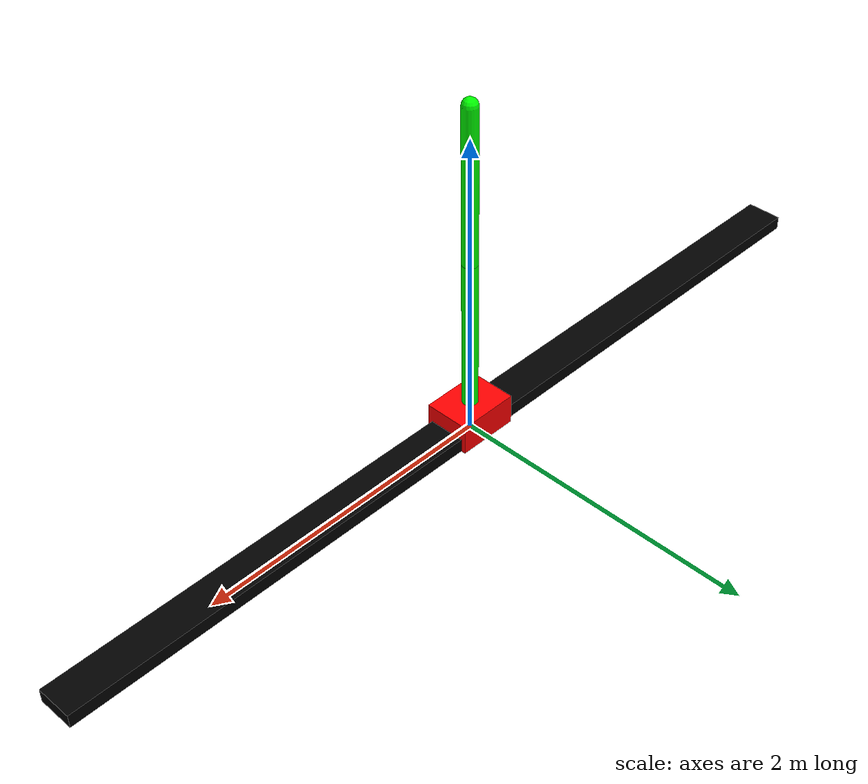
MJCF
<mujoco>
    <option timestep="0.02"/>
    <worldbody>
        <!-- Virtual Track -->
        <geom name="track" type="box" pos="0 0 0.045" size="3.0 0.12 0.045" rgba="0 0 0 1" contype="0" conaffinity="0"/>
        <body pos="0 0 0.1">
            <joint name="cart_slider" type="slide" axis="1 0 0"/>
            <geom name="cart" type="box" size="0.2 0.15 0.1" mass="0.1" rgba="1 0 0 1"/>
            <body pos="0 0 0.1">
                <joint name="pole_hinge" type="hinge" axis="0 1 0"/>
                <geom name="pole" type="capsule" fromto="0 0 0 0 0 1" size="0.05" mass="1" rgba="0 1 0 1"/>
                <body pos="0 0 1">
                    <joint name="pole_joint" type="hinge" axis="0 1 0"/>
                    <geom name="pole2" type="capsule" fromto="0 0 0 0 0 1" size="0.05" mass="1" rgba="0 1 0 1"/>
                </body>
            </body>
        </body>
    </worldbody>
    <actuator>
        <motor joint="cart_slider" ctrlrange="-1 1" gear="100"/>
    </actuator>
    <sensor>
        <jointpos name="cart_pos" joint="cart_slider"/>
        <jointvel name="cart_vel" joint="cart_slider"/>
        <jointpos joint="pole_hinge"/>
        <jointvel joint="pole_hinge"/>
        <jointpos joint="pole_joint"/>
        <jointvel joint="pole_joint"/>
    </sensor>
</mujoco>
